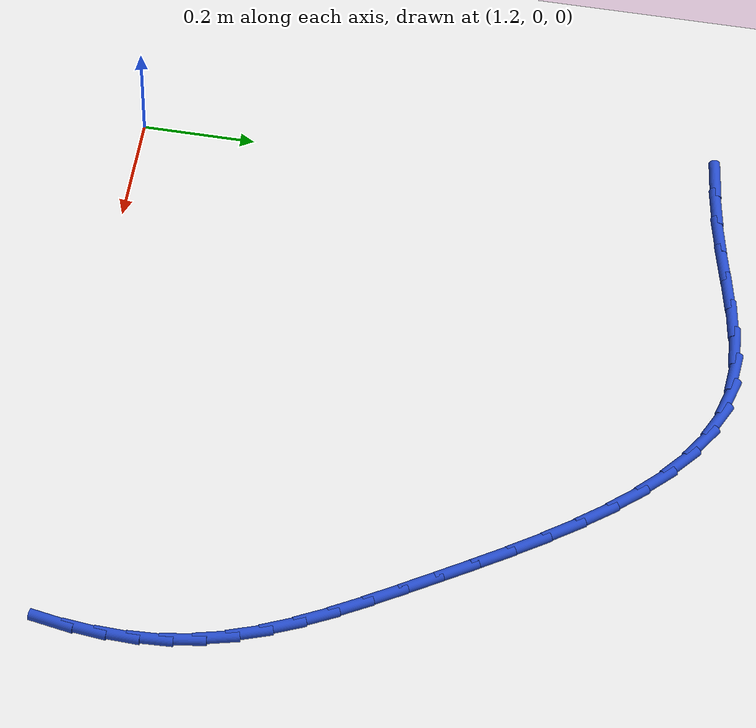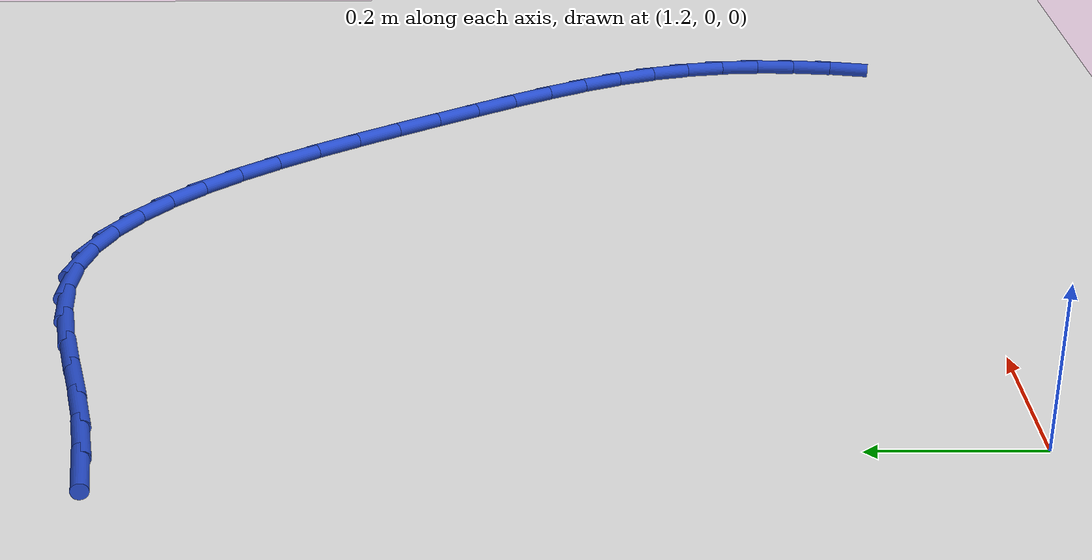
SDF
<sdf version="1.6">
 <world name="default">
  <model name="ground_plane">
   <static>1</static>
   <link name="link">
    <collision name="collision">
     <geometry><plane><normal>0 0 1</normal><size>100 100</size></plane></geometry>
     <surface><friction><ode><mu>100</mu><mu2>50</mu2></ode></friction></surface>
    </collision>
    <visual name="visual">
     <cast_shadows>0</cast_shadows>
     <geometry><plane><normal>0 0 1</normal><size>100 100</size></plane></geometry>
     <material>
      <script><uri>file://media/materials/scripts/gazebo.material</uri><name>Gazebo/WhiteGlow</name></script>
     </material>
    </visual>
   </link>
  </model>
  <model name="line">
   <link name="link_29">
    <pose>1.1559969046013514 1.0242221730648804 0.01 0 1.57 0.16920037700162427</pose>
    <collision name="collision">
     <geometry><cylinder><radius>0.01</radius><length>0.08</length></cylinder></geometry>
    </collision>
    <visual name="visual">
     <material>
      <script><name>Gazebo/Blue</name><uri>file://media/materials/scripts/gazebo.material</uri></script>
     </material>
     <geometry><cylinder><radius>0.01</radius><length>0.08</length></cylinder></geometry>
    </visual>
   </link>
   <link name="link_30">
    <pose>1.2173452167800272 1.034702535304576 0.01 0 1.57 0.21223104889679378</pose>
    <collision name="collision">
     <geometry><cylinder><radius>0.01</radius><length>0.08</length></cylinder></geometry>
    </collision>
    <visual name="visual">
     <material>
      <script><name>Gazebo/Blue</name><uri>file://media/materials/scripts/gazebo.material</uri></script>
     </material>
     <geometry><cylinder><radius>0.01</radius><length>0.08</length></cylinder></geometry>
    </visual>
   </link>
   <link name="link_31">
    <pose>1.2786367084807677 1.0479093784839668 0.01 0 1.57 0.2574663165508267</pose>
    <collision name="collision">
     <geometry><cylinder><radius>0.01</radius><length>0.08</length></cylinder></geometry>
    </collision>
    <visual name="visual">
     <material>
      <script><name>Gazebo/Blue</name><uri>file://media/materials/scripts/gazebo.material</uri></script>
     </material>
     <geometry><cylinder><radius>0.01</radius><length>0.08</length></cylinder></geometry>
    </visual>
   </link>
   <link name="link_32">
    <pose>1.3396846378737444 1.0639839318177473 0.01 0 1.57 0.27544570888108094</pose>
    <collision name="collision">
     <geometry><cylinder><radius>0.01</radius><length>0.08</length></cylinder></geometry>
    </collision>
    <visual name="visual">
     <material>
      <script><name>Gazebo/Blue</name><uri>file://media/materials/scripts/gazebo.material</uri></script>
     </material>
     <geometry><cylinder><radius>0.01</radius><length>0.08</length></cylinder></geometry>
    </visual>
   </link>
   <link name="link_33">
    <pose>1.400151060689392 1.0810735488424987 0.01 0 1.57 0.25906369246511246</pose>
    <collision name="collision">
     <geometry><cylinder><radius>0.01</radius><length>0.08</length></cylinder></geometry>
    </collision>
    <visual name="visual">
     <material>
      <script><name>Gazebo/Blue</name><uri>file://media/materials/scripts/gazebo.material</uri></script>
     </material>
     <geometry><cylinder><radius>0.01</radius><length>0.08</length></cylinder></geometry>
    </visual>
   </link>
   <link name="link_34">
    <pose>1.4596615870514336 1.0968449823259034 0.01 0 1.57 0.20538088252967193</pose>
    <collision name="collision">
     <geometry><cylinder><radius>0.01</radius><length>0.08</length></cylinder></geometry>
    </collision>
    <visual name="visual">
     <material>
      <script><name>Gazebo/Blue</name><uri>file://media/materials/scripts/gazebo.material</uri></script>
     </material>
     <geometry><cylinder><radius>0.01</radius><length>0.08</length></cylinder></geometry>
    </visual>
   </link>
   <link name="link_35">
    <pose>1.5178418270835945 1.1089649850356456 0.01 0 1.57 0.10821242852459655</pose>
    <collision name="collision">
     <geometry><cylinder><radius>0.01</radius><length>0.08</length></cylinder></geometry>
    </collision>
    <visual name="visual">
     <material>
      <script><name>Gazebo/Blue</name><uri>file://media/materials/scripts/gazebo.material</uri></script>
     </material>
     <geometry><cylinder><radius>0.01</radius><length>0.08</length></cylinder></geometry>
    </visual>
   </link>
   <link name="link_36">
    <pose>1.5743173909095964 1.1151003097394074 0.01 0 1.57 -0.04006290617018287</pose>
    <collision name="collision">
     <geometry><cylinder><radius>0.01</radius><length>0.08</length></cylinder></geometry>
    </collision>
    <visual name="visual">
     <material>
      <script><name>Gazebo/Blue</name><uri>file://media/materials/scripts/gazebo.material</uri></script>
     </material>
     <geometry><cylinder><radius>0.01</radius><length>0.08</length></cylinder></geometry>
    </visual>
   </link>
   <link name="link_37">
    <pose>1.628714209899201 1.112919848386108 0.01 0 1.57 -0.22586968857560288</pose>
    <collision name="collision">
     <geometry><cylinder><radius>0.01</radius><length>0.08</length></cylinder></geometry>
    </collision>
    <visual name="visual">
     <material>
      <script><name>Gazebo/Blue</name><uri>file://media/materials/scripts/gazebo.material</uri></script>
     </material>
     <geometry><cylinder><radius>0.01</radius><length>0.08</length></cylinder></geometry>
    </visual>
   </link>
   <link name="link_38">
    <pose>1.6807875703983348 1.1009538692735001 0.01 0 1.57 -0.3995929377420634</pose>
    <collision name="collision">
     <geometry><cylinder><radius>0.01</radius><length>0.08</length></cylinder></geometry>
    </collision>
    <visual name="visual">
     <material>
      <script><name>Gazebo/Blue</name><uri>file://media/materials/scripts/gazebo.material</uri></script>
     </material>
     <geometry><cylinder><radius>0.01</radius><length>0.08</length></cylinder></geometry>
    </visual>
   </link>
   <link name="link_39">
    <pose>1.730619607226897 1.079909128635636 0.01 0 1.57 -0.5472330529616416</pose>
    <collision name="collision">
     <geometry><cylinder><radius>0.01</radius><length>0.08</length></cylinder></geometry>
    </collision>
    <visual name="visual">
     <material>
      <script><name>Gazebo/Blue</name><uri>file://media/materials/scripts/gazebo.material</uri></script>
     </material>
     <geometry><cylinder><radius>0.01</radius><length>0.08</length></cylinder></geometry>
    </visual>
   </link>
   <link name="link_40">
    <pose>1.778343286738794 1.0508308705055445 0.01 0 1.57 -0.667608510187966</pose>
    <collision name="collision">
     <geometry><cylinder><radius>0.01</radius><length>0.08</length></cylinder></geometry>
    </collision>
    <visual name="visual">
     <material>
      <script><name>Gazebo/Blue</name><uri>file://media/materials/scripts/gazebo.material</uri></script>
     </material>
     <geometry><cylinder><radius>0.01</radius><length>0.08</length></cylinder></geometry>
    </visual>
   </link>
   <link name="link_41">
    <pose>1.8240915752879323 1.0147643389162526 0.01 0 1.57 -0.7633300064816355</pose>
    <collision name="collision">
     <geometry><cylinder><radius>0.01</radius><length>0.08</length></cylinder></geometry>
    </collision>
    <visual name="visual">
     <material>
      <script><name>Gazebo/Blue</name><uri>file://media/materials/scripts/gazebo.material</uri></script>
     </material>
     <geometry><cylinder><radius>0.01</radius><length>0.08</length></cylinder></geometry>
    </visual>
   </link>
   <link name="link_42">
    <pose>1.8679974392282197 0.9727547779007909 0.01 0 1.57 -0.8382192681669631</pose>
    <collision name="collision">
     <geometry><cylinder><radius>0.01</radius><length>0.08</length></cylinder></geometry>
    </collision>
    <visual name="visual">
     <material>
      <script><name>Gazebo/Blue</name><uri>file://media/materials/scripts/gazebo.material</uri></script>
     </material>
     <geometry><cylinder><radius>0.01</radius><length>0.08</length></cylinder></geometry>
    </visual>
   </link>
   <link name="link_43">
    <pose>1.9101938449135618 0.9258474314921865 0.01 0 1.57 -0.8959112076306854</pose>
    <collision name="collision">
     <geometry><cylinder><radius>0.01</radius><length>0.08</length></cylinder></geometry>
    </collision>
    <visual name="visual">
     <material>
      <script><name>Gazebo/Blue</name><uri>file://media/materials/scripts/gazebo.material</uri></script>
     </material>
     <geometry><cylinder><radius>0.01</radius><length>0.08</length></cylinder></geometry>
    </visual>
   </link>
   <link name="link_44">
    <pose>1.9508137586978653 0.8750875437234686 0.01 0 1.57 -0.9393381184946205</pose>
    <collision name="collision">
     <geometry><cylinder><radius>0.01</radius><length>0.08</length></cylinder></geometry>
    </collision>
    <visual name="visual">
     <material>
      <script><name>Gazebo/Blue</name><uri>file://media/materials/scripts/gazebo.material</uri></script>
     </material>
     <geometry><cylinder><radius>0.01</radius><length>0.08</length></cylinder></geometry>
    </visual>
   </link>
   <link name="link_45">
    <pose>1.9899901469350378 0.8215203586276654 0.01 0 1.57 -0.9706355519962988</pose>
    <collision name="collision">
     <geometry><cylinder><radius>0.01</radius><length>0.08</length></cylinder></geometry>
    </collision>
    <visual name="visual">
     <material>
      <script><name>Gazebo/Blue</name><uri>file://media/materials/scripts/gazebo.material</uri></script>
     </material>
     <geometry><cylinder><radius>0.01</radius><length>0.08</length></cylinder></geometry>
    </visual>
   </link>
   <link name="link_46">
    <pose>2.027855975978986 0.766191120237806 0.01 0 1.57 -0.9911879939854178</pose>
    <collision name="collision">
     <geometry><cylinder><radius>0.01</radius><length>0.08</length></cylinder></geometry>
    </collision>
    <visual name="visual">
     <material>
      <script><name>Gazebo/Blue</name><uri>file://media/materials/scripts/gazebo.material</uri></script>
     </material>
     <geometry><cylinder><radius>0.01</radius><length>0.08</length></cylinder></geometry>
    </visual>
   </link>
   <link name="link_47">
    <pose>2.0645442121836153 0.710145072586918 0.01 0 1.57 -1.0016825832706817</pose>
    <collision name="collision">
     <geometry><cylinder><radius>0.01</radius><length>0.08</length></cylinder></geometry>
    </collision>
    <visual name="visual">
     <material>
      <script><name>Gazebo/Blue</name><uri>file://media/materials/scripts/gazebo.material</uri></script>
     </material>
     <geometry><cylinder><radius>0.01</radius><length>0.08</length></cylinder></geometry>
    </visual>
   </link>
   <link name="link_48">
    <pose>2.100187821902834 0.6544274597080306 0.01 0 1.57 -1.0055317556902283</pose>
    <collision name="collision">
     <geometry><cylinder><radius>0.01</radius><length>0.08</length></cylinder></geometry>
    </collision>
    <visual name="visual">
     <material>
      <script><name>Gazebo/Blue</name><uri>file://media/materials/scripts/gazebo.material</uri></script>
     </material>
     <geometry><cylinder><radius>0.01</radius><length>0.08</length></cylinder></geometry>
    </visual>
   </link>
   <link name="link_49">
    <pose>2.134789769283997 0.5998767379773675 0.01 0 1.57 -1.0184704289449176</pose>
    <collision name="collision">
     <geometry><cylinder><radius>0.01</radius><length>0.08</length></cylinder></geometry>
    </collision>
    <visual name="visual">
     <material>
      <script><name>Gazebo/Blue</name><uri>file://media/materials/scripts/gazebo.material</uri></script>
     </material>
     <geometry><cylinder><radius>0.01</radius><length>0.08</length></cylinder></geometry>
    </visual>
   </link>
   <link name="link_50">
    <pose>2.1677576585081137 0.5463843560574838 0.01 0 1.57 -1.04607356149611</pose>
    <collision name="collision">
     <geometry><cylinder><radius>0.01</radius><length>0.08</length></cylinder></geometry>
    </collision>
    <visual name="visual">
     <material>
      <script><name>Gazebo/Blue</name><uri>file://media/materials/scripts/gazebo.material</uri></script>
     </material>
     <geometry><cylinder><radius>0.01</radius><length>0.08</length></cylinder></geometry>
    </visual>
   </link>
   <link name="link_51">
    <pose>2.19832876384385 0.49357082779843325 0.01 0 1.57 -1.089716305451072</pose>
    <collision name="collision">
     <geometry><cylinder><radius>0.01</radius><length>0.08</length></cylinder></geometry>
    </collision>
    <visual name="visual">
     <material>
      <script><name>Gazebo/Blue</name><uri>file://media/materials/scripts/gazebo.material</uri></script>
     </material>
     <geometry><cylinder><radius>0.01</radius><length>0.08</length></cylinder></geometry>
    </visual>
   </link>
   <link name="link_52">
    <pose>2.2257403459074308 0.44105664533404493 0.01 0 1.57 -1.1507625773960097</pose>
    <collision name="collision">
     <geometry><cylinder><radius>0.01</radius><length>0.08</length></cylinder></geometry>
    </collision>
    <visual name="visual">
     <material>
      <script><name>Gazebo/Blue</name><uri>file://media/materials/scripts/gazebo.material</uri></script>
     </material>
     <geometry><cylinder><radius>0.01</radius><length>0.08</length></cylinder></geometry>
    </visual>
   </link>
   <link name="link_53">
    <pose>2.2492296653150783 0.3884623007981486 0.01 0 1.57 -1.230174010052943</pose>
    <collision name="collision">
     <geometry><cylinder><radius>0.01</radius><length>0.08</length></cylinder></geometry>
    </collision>
    <visual name="visual">
     <material>
      <script><name>Gazebo/Blue</name><uri>file://media/materials/scripts/gazebo.material</uri></script>
     </material>
     <geometry><cylinder><radius>0.01</radius><length>0.08</length></cylinder></geometry>
    </visual>
   </link>
   <link name="link_54">
    <pose>2.268033982683016 0.3354082863245726 0.01 0 1.57 -1.3275180835693097</pose>
    <collision name="collision">
     <geometry><cylinder><radius>0.01</radius><length>0.08</length></cylinder></geometry>
    </collision>
    <visual name="visual">
     <material>
      <script><name>Gazebo/Blue</name><uri>file://media/materials/scripts/gazebo.material</uri></script>
     </material>
     <geometry><cylinder><radius>0.01</radius><length>0.08</length></cylinder></geometry>
    </visual>
   </link>
   <link name="link_55">
    <pose>2.281408130738955 0.2815224377810874 0.01 0 1.57 -1.4309771956632478</pose>
    <collision name="collision">
     <geometry><cylinder><radius>0.01</radius><length>0.08</length></cylinder></geometry>
    </collision>
    <visual name="visual">
     <material>
      <script><name>Gazebo/Blue</name><uri>file://media/materials/scripts/gazebo.material</uri></script>
     </material>
     <geometry><cylinder><radius>0.01</radius><length>0.08</length></cylinder></geometry>
    </visual>
   </link>
   <link name="link_56">
    <pose>2.2891305383457765 0.22665141224606344 0.01 0 1.57 -1.5269006404851564</pose>
    <collision name="collision">
     <geometry><cylinder><radius>0.01</radius><length>0.08</length></cylinder></geometry>
    </collision>
    <visual name="visual">
     <material>
      <script><name>Gazebo/Blue</name><uri>file://media/materials/scripts/gazebo.material</uri></script>
     </material>
     <geometry><cylinder><radius>0.01</radius><length>0.08</length></cylinder></geometry>
    </visual>
   </link>
   <link name="link_57">
    <pose>2.2915796812271383 0.1708926382831345 0.01 0 1.57 1.5281463237975192</pose>
    <collision name="collision">
     <geometry><cylinder><radius>0.01</radius><length>0.08</length></cylinder></geometry>
    </collision>
    <visual name="visual">
     <material>
      <script><name>Gazebo/Blue</name><uri>file://media/materials/scripts/gazebo.material</uri></script>
     </material>
     <geometry><cylinder><radius>0.01</radius><length>0.08</length></cylinder></geometry>
    </visual>
   </link>
   <link name="link_58">
    <pose>2.2891669864468915 0.11435731547460136 0.01 0 1.57 1.4513842087612483</pose>
    <collision name="collision">
     <geometry><cylinder><radius>0.01</radius><length>0.08</length></cylinder></geometry>
    </collision>
    <visual name="visual">
     <material>
      <script><name>Gazebo/Blue</name><uri>file://media/materials/scripts/gazebo.material</uri></script>
     </material>
     <geometry><cylinder><radius>0.01</radius><length>0.08</length></cylinder></geometry>
    </visual>
   </link>
   <link name="link_59">
    <pose>2.2823038810688883 0.05715664340276606 0.01 0 1.57 1.3842266198870874</pose>
    <collision name="collision">
     <geometry><cylinder><radius>0.01</radius><length>0.08</length></cylinder></geometry>
    </collision>
    <visual name="visual">
     <material>
      <script><name>Gazebo/Blue</name><uri>file://media/materials/scripts/gazebo.material</uri></script>
     </material>
     <geometry><cylinder><radius>0.01</radius><length>0.08</length></cylinder></geometry>
    </visual>
   </link>
  </model>
 </world>
</sdf>
